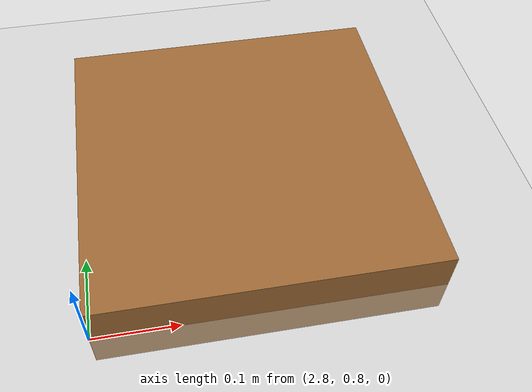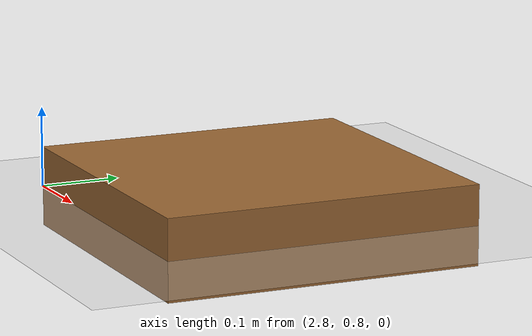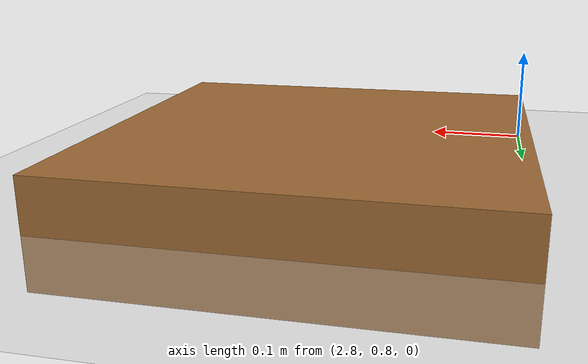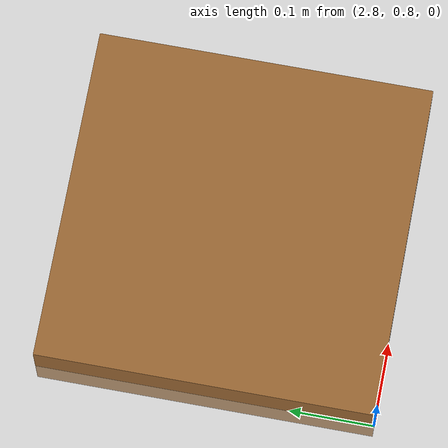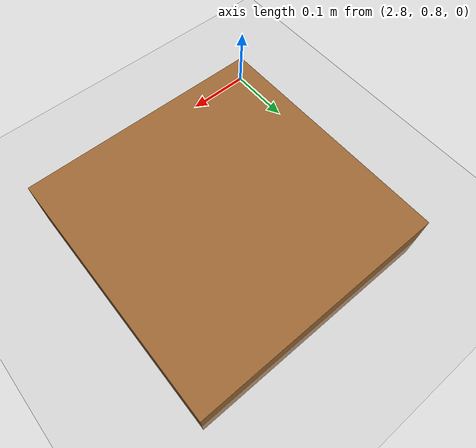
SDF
<?xml version="1.0"?>
<sdf version="1.7">
  <world name="cargobot_field">
    <!-- TEKNOFEST SRUY sahası temsili sim. URDF ve PLC kapı modeli ileride. -->
    <include><uri>model://sun</uri></include>
    <include><uri>model://ground_plane</uri></include>

    <!-- Örnek bir engel -->
    <model name="palette_a">
      <static>true</static>
      <pose>3 1 0 0 0 0</pose>
      <link name="link">
        <visual name="visual">
          <geometry><box><size>0.4 0.4 0.1</size></box></geometry>
          <material><ambient>0.6 0.4 0.2 1</ambient></material>
        </visual>
        <collision name="col">
          <geometry><box><size>0.4 0.4 0.1</size></box></geometry>
        </collision>
      </link>
    </model>
  </world>
</sdf>
